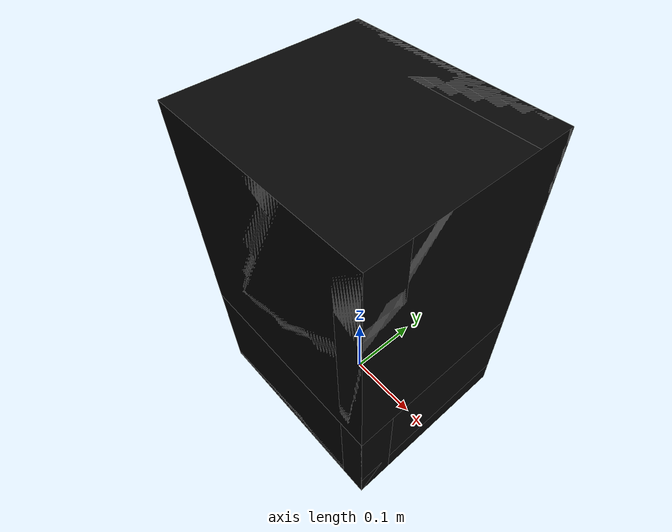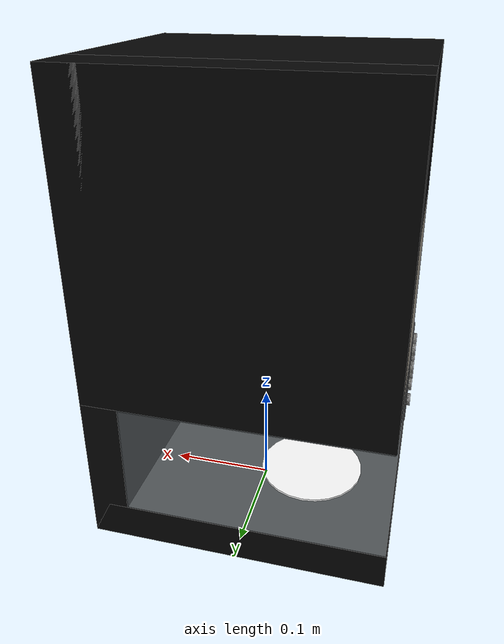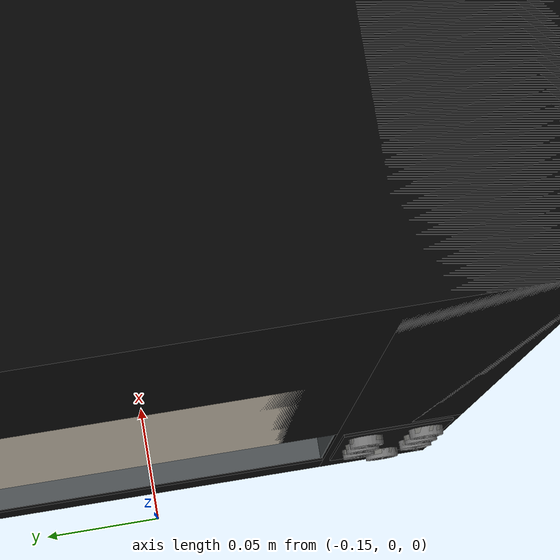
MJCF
<?xml version="1.0" encoding="utf-8"?>
<mujoco model="coffee_machine_block_xlerobot">
  <option timestep="0.002" gravity="0 0 -9.81" />
  <compiler angle="radian" />
  <asset>
    <material name="machine_black" rgba="0.02 0.02 0.02 1" shininess="0.15" specular="0.05" />
    <material name="machine_back" rgba="0.03 0.03 0.03 1" shininess="0.10" specular="0.03" />
    <material name="bay_liner_gray" rgba="0.32 0.34 0.35 1" shininess="0.05" specular="0.03" />
    <material name="brew_head" rgba="0.10 0.10 0.10 1" shininess="0.20" specular="0.10" />
    <material name="front_panel" rgba="0.65 0.62 0.56 1" shininess="0.20" specular="0.12" />
    <material name="water_tank" rgba="0.65 0.75 0.78 0.35" shininess="0.30" specular="0.15" />
    <material name="control_panel" rgba="0.035 0.035 0.035 1" shininess="0.08" specular="0.03" />
    <material name="button_ring" rgba="0.48 0.48 0.46 1" shininess="0.25" specular="0.18" />
    <material name="button_face" rgba="0.09 0.09 0.09 1" shininess="0.12" specular="0.06" />
    <material name="cup_pad_white" rgba="1 1 1 1" shininess="0.02" specular="0.02" />
  </asset>
  <default>
    <default class="visual">
      <geom type="box" group="1" contype="0" conaffinity="0" />
    </default>
    <default class="collision">
      <geom type="box" group="0" contype="1" conaffinity="1" condim="4" friction="0.95 0.3 0.1" solimp="0.998 0.998 0.001" solref="0.001 1" />
    </default>
    <default class="region">
      <geom type="box" group="1" contype="0" conaffinity="0" rgba="0 1 0 0" />
    </default>
  </default>
  <worldbody>
    <body>
      <body name="object">
        <geom class="visual" name="base_visual" pos="0 0 0.0175" size="0.1385 0.1225 0.0175" material="machine_black" />
        <geom class="collision" name="base" pos="0 0 0.0175" size="0.1385 0.1225 0.0175" />
        <!-- 10 cm cup pad. Its front edge is 3.5 cm behind the machine front.
             Local y=0.02375 centers it between the bay edges (-0.075, 0.1225). -->
        <geom class="visual" name="cup_pad_visual" type="cylinder" pos="-0.0535 0.02375 0.0365" size="0.05 0.0015" material="cup_pad_white" />
        <geom class="collision" name="cup_pad_collision" type="cylinder" pos="-0.0535 0.02375 0.0365" size="0.05 0.0015"
              friction="1.2 0.02 0.001" />
        <!-- Matte gray visual liners make the open cup bay boundary readable.
             They sit just inside the existing collision shell and do not collide. -->
        <geom class="visual" name="bay_floor_liner_visual" pos="-0.0175 0.02375 0.0356"
              size="0.1200 0.09875 0.0004" material="bay_liner_gray" />
        <geom class="visual" name="bay_right_liner_visual" pos="-0.0175 -0.0744 0.0900"
              size="0.1200 0.0004 0.0550" material="bay_liner_gray" />
        <geom class="visual" name="bay_back_liner_visual" pos="0.1029 0.02375 0.0900"
              size="0.0004 0.09875 0.0550" material="bay_liner_gray" />
        <geom class="visual" name="bay_ceiling_liner_visual" pos="-0.0175 0.02375 0.1444"
              size="0.1200 0.09875 0.0004" material="bay_liner_gray" />
        <!-- The +Y wall starts above the bay so the front-left side is open. -->
        <geom class="visual" name="left_upper_wall_visual" pos="0 0.09875 0.2895" size="0.1385 0.02375 0.1445" material="machine_black" />
        <geom class="collision" name="left_upper_wall" pos="0 0.09875 0.2895" size="0.1385 0.02375 0.1445" />
        <geom class="visual" name="right_wall_visual" pos="0 -0.09875 0.217" size="0.1385 0.02375 0.217" material="machine_black" />
        <geom class="collision" name="right_wall" pos="0 -0.09875 0.217" size="0.1385 0.02375 0.217" />
        <geom class="visual" name="back_visual" pos="0.121 0 0.217" size="0.0175 0.1225 0.217" material="machine_back" />
        <geom class="collision" name="back" pos="0.121 0 0.217" size="0.0175 0.1225 0.217" />
        <!-- The lower face is at z=0.145, leaving 0.110 m above the base. -->
        <geom class="visual" name="upper_body_visual" pos="0 0 0.2895" size="0.1385 0.1225 0.1445" material="machine_black" />
        <geom class="collision" name="upper_body" pos="0 0 0.2895" size="0.1385 0.1225 0.1445" />
        <geom class="visual" name="brew_head_visual" pos="-0.0554 0 0.160" size="0.045 0.055 0.015" material="brew_head" />
        <geom class="collision" name="brew_head" pos="-0.0554 0 0.160" size="0.045 0.055 0.015" />
        <!-- Collision was enabled on this panel in the final block version. -->
        <geom class="visual" name="front_panel_visual" pos="-0.1265 0 0.225" size="0.012 0.075 0.080" material="front_panel" />
        <geom class="collision" name="front_panel" pos="-0.1265 0 0.225" size="0.012 0.075 0.080" />
        <geom class="visual" name="water_tank_visual" pos="0 -0.0637 0.300" size="0.1185 0.030 0.105" material="water_tank" />
        <!-- Nominal center for a 6 cm diameter, 10 cm tall cup. -->
        <!--
          Seven-button panel matching the reference: two columns by three rows,
          plus a centered power button. Local -X is outward; pressing moves +X.
        -->
        <geom class="visual" name="control_panel_visual" pos="-0.1390 -0.09875 0.088" size="0.0005 0.0210 0.0510" material="control_panel" />

        <body name="button_top_left" pos="-0.14075 -0.0870 0.123">
          <joint name="button_top_left_joint" type="slide" axis="1 0 0" limited="true" range="0 0.006" stiffness="80" damping="0.2" armature="0.00001" />
          <geom class="visual" name="button_top_left_ring" type="cylinder" pos="0.00075 0 0" size="0.0065 0.0015" euler="0 1.5707963 0" material="button_ring" />
          <geom class="visual" name="button_top_left_face" type="cylinder" pos="-0.00125 0 0" size="0.0052 0.0010" euler="0 1.5707963 0" material="button_face" />
          <geom class="collision" name="button_top_left_collision" type="cylinder" size="0.0065 0.00225" euler="0 1.5707963 0" />
          <site name="button_top_left_touch_site" type="cylinder" size="0.0066 0.0023" euler="0 1.5707963 0" rgba="0 0 0 0" />
        </body>
        <body name="button_top_right" pos="-0.14075 -0.1105 0.123">
          <joint name="button_top_right_joint" type="slide" axis="1 0 0" limited="true" range="0 0.006" stiffness="80" damping="0.2" armature="0.00001" />
          <geom class="visual" name="button_top_right_ring" type="cylinder" pos="0.00075 0 0" size="0.0065 0.0015" euler="0 1.5707963 0" material="button_ring" />
          <geom class="visual" name="button_top_right_face" type="cylinder" pos="-0.00125 0 0" size="0.0052 0.0010" euler="0 1.5707963 0" material="button_face" />
          <geom class="collision" name="button_top_right_collision" type="cylinder" size="0.0065 0.00225" euler="0 1.5707963 0" />
          <site name="button_top_right_touch_site" type="cylinder" size="0.0066 0.0023" euler="0 1.5707963 0" rgba="0 0 0 0" />
        </body>

        <body name="button_middle_left" pos="-0.14075 -0.0870 0.101">
          <joint name="button_middle_left_joint" type="slide" axis="1 0 0" limited="true" range="0 0.006" stiffness="80" damping="0.2" armature="0.00001" />
          <geom class="visual" name="button_middle_left_ring" type="cylinder" pos="0.00075 0 0" size="0.0065 0.0015" euler="0 1.5707963 0" material="button_ring" />
          <geom class="visual" name="button_middle_left_face" type="cylinder" pos="-0.00125 0 0" size="0.0052 0.0010" euler="0 1.5707963 0" material="button_face" />
          <geom class="collision" name="button_middle_left_collision" type="cylinder" size="0.0065 0.00225" euler="0 1.5707963 0" />
          <site name="button_middle_left_touch_site" type="cylinder" size="0.0066 0.0023" euler="0 1.5707963 0" rgba="0 0 0 0" />
        </body>
        <body name="brew_button" pos="-0.14075 -0.1105 0.101">
          <joint name="brew_button_joint" type="slide" axis="1 0 0" limited="true" range="0 0.006" stiffness="80" damping="0.2" armature="0.00001" />
          <geom class="visual" name="brew_button_ring" type="cylinder" pos="0.00075 0 0" size="0.0065 0.0015" euler="0 1.5707963 0" material="button_ring" />
          <geom class="visual" name="brew_button_face" type="cylinder" pos="-0.00125 0 0" size="0.0052 0.0010" euler="0 1.5707963 0" material="button_face" />
          <geom class="collision" name="brew_button_collision" type="cylinder" size="0.0065 0.00225" euler="0 1.5707963 0" />
          <site name="brew_button_touch_site" type="cylinder" size="0.0066 0.0023" euler="0 1.5707963 0" rgba="0 0 0 0" />
        </body>

        <body name="button_lower_left" pos="-0.14075 -0.0870 0.079">
          <joint name="button_lower_left_joint" type="slide" axis="1 0 0" limited="true" range="0 0.006" stiffness="80" damping="0.2" armature="0.00001" />
          <geom class="visual" name="button_lower_left_ring" type="cylinder" pos="0.00075 0 0" size="0.0065 0.0015" euler="0 1.5707963 0" material="button_ring" />
          <geom class="visual" name="button_lower_left_face" type="cylinder" pos="-0.00125 0 0" size="0.0052 0.0010" euler="0 1.5707963 0" material="button_face" />
          <geom class="collision" name="button_lower_left_collision" type="cylinder" size="0.0065 0.00225" euler="0 1.5707963 0" />
          <site name="button_lower_left_touch_site" type="cylinder" size="0.0066 0.0023" euler="0 1.5707963 0" rgba="0 0 0 0" />
        </body>
        <body name="button_lower_right" pos="-0.14075 -0.1105 0.079">
          <joint name="button_lower_right_joint" type="slide" axis="1 0 0" limited="true" range="0 0.006" stiffness="80" damping="0.2" armature="0.00001" />
          <geom class="visual" name="button_lower_right_ring" type="cylinder" pos="0.00075 0 0" size="0.0065 0.0015" euler="0 1.5707963 0" material="button_ring" />
          <geom class="visual" name="button_lower_right_face" type="cylinder" pos="-0.00125 0 0" size="0.0052 0.0010" euler="0 1.5707963 0" material="button_face" />
          <geom class="collision" name="button_lower_right_collision" type="cylinder" size="0.0065 0.00225" euler="0 1.5707963 0" />
          <site name="button_lower_right_touch_site" type="cylinder" size="0.0066 0.0023" euler="0 1.5707963 0" rgba="0 0 0 0" />
        </body>

        <body name="button_power" pos="-0.14075 -0.09875 0.051">
          <joint name="button_power_joint" type="slide" axis="1 0 0" limited="true" range="0 0.006" stiffness="80" damping="0.2" armature="0.00001" />
          <geom class="visual" name="button_power_ring" type="cylinder" pos="0.00075 0 0" size="0.0068 0.0015" euler="0 1.5707963 0" material="button_ring" />
          <geom class="visual" name="button_power_face" type="cylinder" pos="-0.00125 0 0" size="0.0055 0.0010" euler="0 1.5707963 0" material="button_face" />
          <geom class="collision" name="button_power_collision" type="cylinder" size="0.0068 0.00225" euler="0 1.5707963 0" />
          <site name="button_power_touch_site" type="cylinder" size="0.0069 0.0023" euler="0 1.5707963 0" rgba="0 0 0 0" />
        </body>

        <site name="receptacle_place_site" type="sphere" pos="-0.0554 0 0.085" size="0.005" rgba="0 0 0 0" />
        <!-- Full model bounds, used by RoboCasa fixture placement utilities. -->
        <geom class="region" name="reg_main" pos="0 0 0.217" size="0.1385 0.1225 0.217" />
      </body>
    </body>
  </worldbody>
  <sensor>
    <touch name="button_top_left_touch" site="button_top_left_touch_site" />
    <touch name="button_top_right_touch" site="button_top_right_touch_site" />
    <touch name="button_middle_left_touch" site="button_middle_left_touch_site" />
    <touch name="brew_button_touch" site="brew_button_touch_site" />
    <touch name="button_lower_left_touch" site="button_lower_left_touch_site" />
    <touch name="button_lower_right_touch" site="button_lower_right_touch_site" />
    <touch name="button_power_touch" site="button_power_touch_site" />
  </sensor>
</mujoco>
